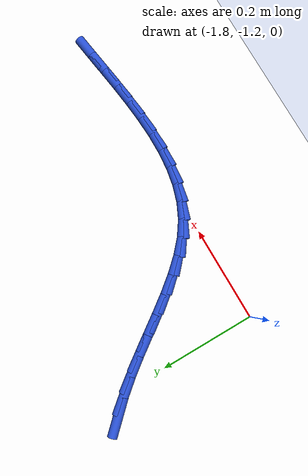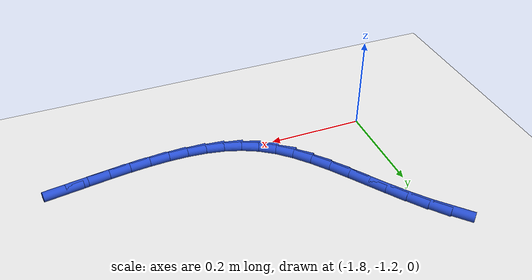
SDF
<sdf version="1.6">
 <world name="default">
  <model name="ground_plane">
   <static>1</static>
   <link name="link">
    <collision name="collision">
     <geometry><plane><normal>0 0 1</normal><size>100 100</size></plane></geometry>
     <surface><friction><ode><mu>100</mu><mu2>50</mu2></ode></friction></surface>
    </collision>
    <visual name="visual">
     <cast_shadows>0</cast_shadows>
     <geometry><plane><normal>0 0 1</normal><size>100 100</size></plane></geometry>
     <material>
      <script><uri>file://media/materials/scripts/gazebo.material</uri><name>Gazebo/WhiteGlow</name></script>
     </material>
    </visual>
   </link>
  </model>
  <model name="line">
   <link name="link_106">
    <pose>-1.8328358929280426 -0.8744618887921026 0.01 0 1.57 -0.8078310005625079</pose>
    <collision name="collision">
     <geometry><cylinder><radius>0.01</radius><length>0.08</length></cylinder></geometry>
    </collision>
    <visual name="visual">
     <material>
      <script><name>Gazebo/Blue</name><uri>file://media/materials/scripts/gazebo.material</uri></script>
     </material>
     <geometry><cylinder><radius>0.01</radius><length>0.08</length></cylinder></geometry>
    </visual>
   </link>
   <link name="link_107">
    <pose>-1.8035903084573763 -0.905049936590255 0.01 0 1.57 -0.8735573908251423</pose>
    <collision name="collision">
     <geometry><cylinder><radius>0.01</radius><length>0.08</length></cylinder></geometry>
    </collision>
    <visual name="visual">
     <material>
      <script><name>Gazebo/Blue</name><uri>file://media/materials/scripts/gazebo.material</uri></script>
     </material>
     <geometry><cylinder><radius>0.01</radius><length>0.08</length></cylinder></geometry>
    </visual>
   </link>
   <link name="link_108">
    <pose>-1.7760607404292836 -0.9379179457415776 0.01 0 1.57 -0.9209129843939714</pose>
    <collision name="collision">
     <geometry><cylinder><radius>0.01</radius><length>0.08</length></cylinder></geometry>
    </collision>
    <visual name="visual">
     <material>
      <script><name>Gazebo/Blue</name><uri>file://media/materials/scripts/gazebo.material</uri></script>
     </material>
     <geometry><cylinder><radius>0.01</radius><length>0.08</length></cylinder></geometry>
    </visual>
   </link>
   <link name="link_109">
    <pose>-1.7498786322795796 -0.9723671660657959 0.01 0 1.57 -0.9463189104068366</pose>
    <collision name="collision">
     <geometry><cylinder><radius>0.01</radius><length>0.08</length></cylinder></geometry>
    </collision>
    <visual name="visual">
     <material>
      <script><name>Gazebo/Blue</name><uri>file://media/materials/scripts/gazebo.material</uri></script>
     </material>
     <geometry><cylinder><radius>0.01</radius><length>0.08</length></cylinder></geometry>
    </visual>
   </link>
   <link name="link_110">
    <pose>-1.724542909157125 -1.00752197397124 0.01 0 1.57 -0.9505224221015164</pose>
    <collision name="collision">
     <geometry><cylinder><radius>0.01</radius><length>0.08</length></cylinder></geometry>
    </collision>
    <visual name="visual">
     <material>
      <script><name>Gazebo/Blue</name><uri>file://media/materials/scripts/gazebo.material</uri></script>
     </material>
     <geometry><cylinder><radius>0.01</radius><length>0.08</length></cylinder></geometry>
    </visual>
   </link>
   <link name="link_111">
    <pose>-1.699552496210779 -1.042506745866237 0.01 0 1.57 -0.9331315896117182</pose>
    <collision name="collision">
     <geometry><cylinder><radius>0.01</radius><length>0.08</length></cylinder></geometry>
    </collision>
    <visual name="visual">
     <material>
      <script><name>Gazebo/Blue</name><uri>file://media/materials/scripts/gazebo.material</uri></script>
     </material>
     <geometry><cylinder><radius>0.01</radius><length>0.08</length></cylinder></geometry>
    </visual>
   </link>
   <link name="link_112">
    <pose>-1.6744063185894018 -1.076445858159116 0.01 0 1.57 -0.8924710285214263</pose>
    <collision name="collision">
     <geometry><cylinder><radius>0.01</radius><length>0.08</length></cylinder></geometry>
    </collision>
    <visual name="visual">
     <material>
      <script><name>Gazebo/Blue</name><uri>file://media/materials/scripts/gazebo.material</uri></script>
     </material>
     <geometry><cylinder><radius>0.01</radius><length>0.08</length></cylinder></geometry>
    </visual>
   </link>
   <link name="link_113">
    <pose>-1.648603301441852 -1.1084636872582063 0.01 0 1.57 -0.8256028346288482</pose>
    <collision name="collision">
     <geometry><cylinder><radius>0.01</radius><length>0.08</length></cylinder></geometry>
    </collision>
    <visual name="visual">
     <material>
      <script><name>Gazebo/Blue</name><uri>file://media/materials/scripts/gazebo.material</uri></script>
     </material>
     <geometry><cylinder><radius>0.01</radius><length>0.08</length></cylinder></geometry>
    </visual>
   </link>
   <link name="link_114">
    <pose>-1.6216423699169897 -1.1376846095718365 0.01 0 1.57 -0.7287553945792524</pose>
    <collision name="collision">
     <geometry><cylinder><radius>0.01</radius><length>0.08</length></cylinder></geometry>
    </collision>
    <visual name="visual">
     <material>
      <script><name>Gazebo/Blue</name><uri>file://media/materials/scripts/gazebo.material</uri></script>
     </material>
     <geometry><cylinder><radius>0.01</radius><length>0.08</length></cylinder></geometry>
    </visual>
   </link>
   <link name="link_115">
    <pose>-1.5930224491636733 -1.1632330015083356 0.01 0 1.57 -0.5987421698557039</pose>
    <collision name="collision">
     <geometry><cylinder><radius>0.01</radius><length>0.08</length></cylinder></geometry>
    </collision>
    <visual name="visual">
     <material>
      <script><name>Gazebo/Blue</name><uri>file://media/materials/scripts/gazebo.material</uri></script>
     </material>
     <geometry><cylinder><radius>0.01</radius><length>0.08</length></cylinder></geometry>
    </visual>
   </link>
   <link name="link_116">
    <pose>-1.5622427374725592 -1.184233747819097 0.01 0 1.57 -0.44637924511065263</pose>
    <collision name="collision">
     <geometry><cylinder><radius>0.01</radius><length>0.08</length></cylinder></geometry>
    </collision>
    <visual name="visual">
     <material>
      <script><name>Gazebo/Blue</name><uri>file://media/materials/scripts/gazebo.material</uri></script>
     </material>
     <geometry><cylinder><radius>0.01</radius><length>0.08</length></cylinder></geometry>
    </visual>
   </link>
   <link name="link_117">
    <pose>-1.5289847010706195 -1.2001509513588593 0.01 0 1.57 -0.30577146690428797</pose>
    <collision name="collision">
     <geometry><cylinder><radius>0.01</radius><length>0.08</length></cylinder></geometry>
    </collision>
    <visual name="visual">
     <material>
      <script><name>Gazebo/Blue</name><uri>file://media/materials/scripts/gazebo.material</uri></script>
     </material>
     <geometry><cylinder><radius>0.01</radius><length>0.08</length></cylinder></geometry>
    </visual>
   </link>
   <link name="link_118">
    <pose>-1.4934276702439084 -1.2113752877260644 0.01 0 1.57 -0.18612683563432783</pose>
    <collision name="collision">
     <geometry><cylinder><radius>0.01</radius><length>0.08</length></cylinder></geometry>
    </collision>
    <visual name="visual">
     <material>
      <script><name>Gazebo/Blue</name><uri>file://media/materials/scripts/gazebo.material</uri></script>
     </material>
     <geometry><cylinder><radius>0.01</radius><length>0.08</length></cylinder></geometry>
    </visual>
   </link>
   <link name="link_119">
    <pose>-1.4558352034878677 -1.218454189291698 0.01 0 1.57 -0.0881983078503021</pose>
    <collision name="collision">
     <geometry><cylinder><radius>0.01</radius><length>0.08</length></cylinder></geometry>
    </collision>
    <visual name="visual">
     <material>
      <script><name>Gazebo/Blue</name><uri>file://media/materials/scripts/gazebo.material</uri></script>
     </material>
     <geometry><cylinder><radius>0.01</radius><length>0.08</length></cylinder></geometry>
    </visual>
   </link>
   <link name="link_120">
    <pose>-1.416470859297935 -1.2219350884267444 0.01 0 1.57 -0.010528141376481863</pose>
    <collision name="collision">
     <geometry><cylinder><radius>0.01</radius><length>0.08</length></cylinder></geometry>
    </collision>
    <visual name="visual">
     <material>
      <script><name>Gazebo/Blue</name><uri>file://media/materials/scripts/gazebo.material</uri></script>
     </material>
     <geometry><cylinder><radius>0.01</radius><length>0.08</length></cylinder></geometry>
    </visual>
   </link>
   <link name="link_121">
    <pose>-1.3755981961695496 -1.2223654175021883 0.01 0 1.57 0.049175313641475385</pose>
    <collision name="collision">
     <geometry><cylinder><radius>0.01</radius><length>0.08</length></cylinder></geometry>
    </collision>
    <visual name="visual">
     <material>
      <script><name>Gazebo/Blue</name><uri>file://media/materials/scripts/gazebo.material</uri></script>
     </material>
     <geometry><cylinder><radius>0.01</radius><length>0.08</length></cylinder></geometry>
    </visual>
   </link>
   <link name="link_122">
    <pose>-1.3334807725981528 -1.220292608889015 0.01 0 1.57 0.09320117786085844</pose>
    <collision name="collision">
     <geometry><cylinder><radius>0.01</radius><length>0.08</length></cylinder></geometry>
    </collision>
    <visual name="visual">
     <material>
      <script><name>Gazebo/Blue</name><uri>file://media/materials/scripts/gazebo.material</uri></script>
     </material>
     <geometry><cylinder><radius>0.01</radius><length>0.08</length></cylinder></geometry>
    </visual>
   </link>
   <link name="link_123">
    <pose>-1.2903821470791832 -1.2162640949582098 0.01 0 1.57 0.12345048958093123</pose>
    <collision name="collision">
     <geometry><cylinder><radius>0.01</radius><length>0.08</length></cylinder></geometry>
    </collision>
    <visual name="visual">
     <material>
      <script><name>Gazebo/Blue</name><uri>file://media/materials/scripts/gazebo.material</uri></script>
     </material>
     <geometry><cylinder><radius>0.01</radius><length>0.08</length></cylinder></geometry>
    </visual>
   </link>
   <link name="link_124">
    <pose>-1.2465658781080806 -1.2108273080807572 0.01 0 1.57 0.14130575926861264</pose>
    <collision name="collision">
     <geometry><cylinder><radius>0.01</radius><length>0.08</length></cylinder></geometry>
    </collision>
    <visual name="visual">
     <material>
      <script><name>Gazebo/Blue</name><uri>file://media/materials/scripts/gazebo.material</uri></script>
     </material>
     <geometry><cylinder><radius>0.01</radius><length>0.08</length></cylinder></geometry>
    </visual>
   </link>
   <link name="link_125">
    <pose>-1.2022955241802848 -1.2045296806276424 0.01 0 1.57 0.1476117709800904</pose>
    <collision name="collision">
     <geometry><cylinder><radius>0.01</radius><length>0.08</length></cylinder></geometry>
    </collision>
    <visual name="visual">
     <material>
      <script><name>Gazebo/Blue</name><uri>file://media/materials/scripts/gazebo.material</uri></script>
     </material>
     <geometry><cylinder><radius>0.01</radius><length>0.08</length></cylinder></geometry>
    </visual>
   </link>
   <link name="link_126">
    <pose>-1.1578346437912335 -1.19791864496985 0.01 0 1.57 0.14268935485957795</pose>
    <collision name="collision">
     <geometry><cylinder><radius>0.01</radius><length>0.08</length></cylinder></geometry>
    </collision>
    <visual name="visual">
     <material>
      <script><name>Gazebo/Blue</name><uri>file://media/materials/scripts/gazebo.material</uri></script>
     </material>
     <geometry><cylinder><radius>0.01</radius><length>0.08</length></cylinder></geometry>
    </visual>
   </link>
  </model>
 </world>
</sdf>
